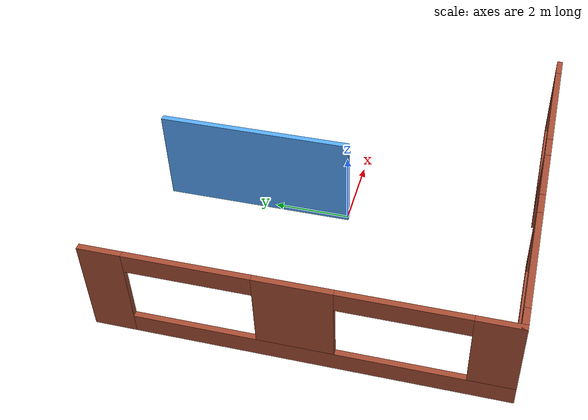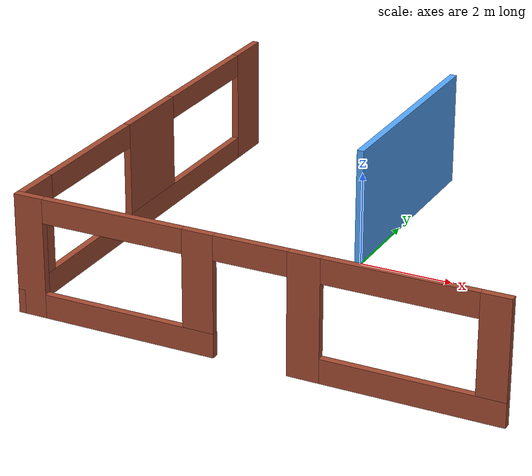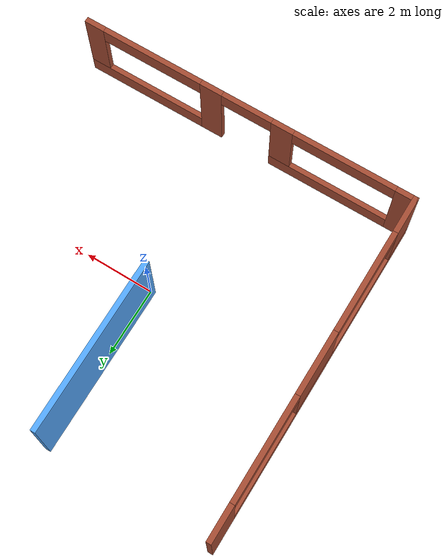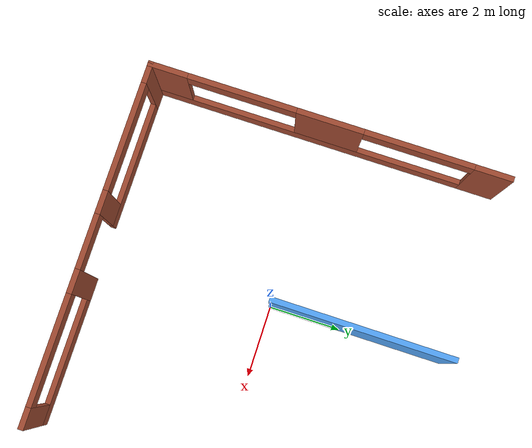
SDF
<sdf version="1.6">
 <model name="building">
  <link name="Wall_0">
   <pose>-4.938 0 0 0 0 -1.5708</pose>
   <visual name="Wall_0_Visual_5">
    <pose>2.39262 0 2.25 0 -0 0</pose>
    <geometry><box><size>3 0.15 0.5</size></box></geometry>
    <material>
     <script><uri>file://media/materials/scripts/gazebo.material</uri><name>Gazebo/Bricks</name></script>
     <ambient>1 1 1 1</ambient>
     <shader type="pixel"/>
     <diffuse>1 1 1 1</diffuse>
     <specular>0.2 0.2 0.2 1</specular>
     <emissive>0 0 0 1</emissive>
    </material>
    <meta><layer>0</layer></meta>
   </visual>
   <visual name="Wall_0_Visual_4">
    <pose>-2.45121 0 2.25 0 -0 0</pose>
    <geometry><box><size>3 0.15 0.5</size></box></geometry>
    <material>
     <script><uri>file://media/materials/scripts/gazebo.material</uri><name>Gazebo/Bricks</name></script>
     <ambient>1 1 1 1</ambient>
     <shader type="pixel"/>
     <diffuse>1 1 1 1</diffuse>
     <specular>0.2 0.2 0.2 1</specular>
     <emissive>0 0 0 1</emissive>
    </material>
    <meta><layer>0</layer></meta>
   </visual>
   <visual name="Wall_0_Visual_0">
    <pose>-4.4756 0 1.25 0 -0 0</pose>
    <geometry><box><size>1.04879 0.15 2.5</size></box></geometry>
    <material>
     <script><uri>file://media/materials/scripts/gazebo.material</uri><name>Gazebo/Bricks</name></script>
     <ambient>1 1 1 1</ambient>
     <shader type="pixel"/>
     <diffuse>1 1 1 1</diffuse>
     <specular>0.2 0.2 0.2 1</specular>
     <emissive>0 0 0 1</emissive>
    </material>
    <meta><layer>0</layer></meta>
   </visual>
   <visual name="Wall_0_Visual_3">
    <pose>4.44631 0 1.5 0 -0 0</pose>
    <geometry><box><size>1.10737 0.15 2</size></box></geometry>
    <material>
     <script><uri>file://media/materials/scripts/gazebo.material</uri><name>Gazebo/Bricks</name></script>
     <ambient>1 1 1 1</ambient>
     <shader type="pixel"/>
     <diffuse>1 1 1 1</diffuse>
     <specular>0.2 0.2 0.2 1</specular>
     <emissive>0 0 0 1</emissive>
    </material>
    <meta><layer>0</layer></meta>
   </visual>
   <visual name="Wall_0_Visual_2">
    <pose>-0.029291 0 1.5 0 -0 0</pose>
    <geometry><box><size>1.84383 0.15 2</size></box></geometry>
    <material>
     <script><uri>file://media/materials/scripts/gazebo.material</uri><name>Gazebo/Bricks</name></script>
     <ambient>1 1 1 1</ambient>
     <shader type="pixel"/>
     <diffuse>1 1 1 1</diffuse>
     <specular>0.2 0.2 0.2 1</specular>
     <emissive>0 0 0 1</emissive>
    </material>
    <meta><layer>0</layer></meta>
   </visual>
   <visual name="Wall_0_Visual_1">
    <pose>0.524397 0 0.25 0 -0 0</pose>
    <geometry><box><size>8.95121 0.15 0.5</size></box></geometry>
    <material>
     <script><uri>file://media/materials/scripts/gazebo.material</uri><name>Gazebo/Bricks</name></script>
     <ambient>1 1 1 1</ambient>
     <shader type="pixel"/>
     <diffuse>1 1 1 1</diffuse>
     <specular>0.2 0.2 0.2 1</specular>
     <emissive>0 0 0 1</emissive>
    </material>
    <meta><layer>0</layer></meta>
   </visual>
   <collision name="Wall_0_Collision_1">
    <pose>0.524397 0 0.25 0 -0 0</pose>
    <geometry><box><size>8.95121 0.15 0.5</size></box></geometry>
    <surface>
     <friction>
      <ode><mu>1</mu><mu2>1</mu2><fdir1>0 0 0</fdir1><slip1>0</slip1><slip2>0</slip2></ode>
      <torsional>
       <coefficient>1</coefficient>
       <patch_radius>0</patch_radius>
       <surface_radius>0</surface_radius>
       <use_patch_radius>1</use_patch_radius>
       <ode><slip>0</slip></ode>
      </torsional>
     </friction>
     <bounce><restitution_coefficient>0</restitution_coefficient><threshold>1e+06</threshold></bounce>
     <contact>
      <collide_without_contact>0</collide_without_contact>
      <collide_without_contact_bitmask>1</collide_without_contact_bitmask>
      <collide_bitmask>1</collide_bitmask>
      <ode>
       <soft_cfm>0</soft_cfm>
       <soft_erp>0.2</soft_erp>
       <kp>1e+13</kp>
       <kd>1</kd>
       <max_vel>0.01</max_vel>
       <min_depth>0</min_depth>
      </ode>
      <bullet>
       <split_impulse>1</split_impulse>
       <split_impulse_penetration_threshold>-0.01</split_impulse_penetration_threshold>
       <soft_cfm>0</soft_cfm>
       <soft_erp>0.2</soft_erp>
       <kp>1e+13</kp>
       <kd>1</kd>
      </bullet>
     </contact>
    </surface>
   </collision>
   <collision name="Wall_0_Collision_3">
    <pose>4.44631 0 1.5 0 -0 0</pose>
    <geometry><box><size>1.10737 0.15 2</size></box></geometry>
    <surface>
     <friction>
      <ode><mu>1</mu><mu2>1</mu2><fdir1>0 0 0</fdir1><slip1>0</slip1><slip2>0</slip2></ode>
      <torsional>
       <coefficient>1</coefficient>
       <patch_radius>0</patch_radius>
       <surface_radius>0</surface_radius>
       <use_patch_radius>1</use_patch_radius>
       <ode><slip>0</slip></ode>
      </torsional>
     </friction>
     <bounce><restitution_coefficient>0</restitution_coefficient><threshold>1e+06</threshold></bounce>
     <contact>
      <collide_without_contact>0</collide_without_contact>
      <collide_without_contact_bitmask>1</collide_without_contact_bitmask>
      <collide_bitmask>1</collide_bitmask>
      <ode>
       <soft_cfm>0</soft_cfm>
       <soft_erp>0.2</soft_erp>
       <kp>1e+13</kp>
       <kd>1</kd>
       <max_vel>0.01</max_vel>
       <min_depth>0</min_depth>
      </ode>
      <bullet>
       <split_impulse>1</split_impulse>
       <split_impulse_penetration_threshold>-0.01</split_impulse_penetration_threshold>
       <soft_cfm>0</soft_cfm>
       <soft_erp>0.2</soft_erp>
       <kp>1e+13</kp>
       <kd>1</kd>
      </bullet>
     </contact>
    </surface>
   </collision>
   <collision name="Wall_0_Collision_4">
    <pose>-2.45121 0 2.25 0 -0 0</pose>
    <geometry><box><size>3 0.15 0.5</size></box></geometry>
    <surface>
     <friction>
      <ode><mu>1</mu><mu2>1</mu2><fdir1>0 0 0</fdir1><slip1>0</slip1><slip2>0</slip2></ode>
      <torsional>
       <coefficient>1</coefficient>
       <patch_radius>0</patch_radius>
       <surface_radius>0</surface_radius>
       <use_patch_radius>1</use_patch_radius>
       <ode><slip>0</slip></ode>
      </torsional>
     </friction>
     <bounce><restitution_coefficient>0</restitution_coefficient><threshold>1e+06</threshold></bounce>
     <contact>
      <collide_without_contact>0</collide_without_contact>
      <collide_without_contact_bitmask>1</collide_without_contact_bitmask>
      <collide_bitmask>1</collide_bitmask>
      <ode>
       <soft_cfm>0</soft_cfm>
       <soft_erp>0.2</soft_erp>
       <kp>1e+13</kp>
       <kd>1</kd>
       <max_vel>0.01</max_vel>
       <min_depth>0</min_depth>
      </ode>
      <bullet>
       <split_impulse>1</split_impulse>
       <split_impulse_penetration_threshold>-0.01</split_impulse_penetration_threshold>
       <soft_cfm>0</soft_cfm>
       <soft_erp>0.2</soft_erp>
       <kp>1e+13</kp>
       <kd>1</kd>
      </bullet>
     </contact>
    </surface>
   </collision>
   <collision name="Wall_0_Collision_2">
    <pose>-0.029291 0 1.5 0 -0 0</pose>
    <geometry><box><size>1.84383 0.15 2</size></box></geometry>
    <surface>
     <friction>
      <ode><mu>1</mu><mu2>1</mu2><fdir1>0 0 0</fdir1><slip1>0</slip1><slip2>0</slip2></ode>
      <torsional>
       <coefficient>1</coefficient>
       <patch_radius>0</patch_radius>
       <surface_radius>0</surface_radius>
       <use_patch_radius>1</use_patch_radius>
       <ode><slip>0</slip></ode>
      </torsional>
     </friction>
     <bounce><restitution_coefficient>0</restitution_coefficient><threshold>1e+06</threshold></bounce>
     <contact>
      <collide_without_contact>0</collide_without_contact>
      <collide_without_contact_bitmask>1</collide_without_contact_bitmask>
      <collide_bitmask>1</collide_bitmask>
      <ode>
       <soft_cfm>0</soft_cfm>
       <soft_erp>0.2</soft_erp>
       <kp>1e+13</kp>
       <kd>1</kd>
       <max_vel>0.01</max_vel>
       <min_depth>0</min_depth>
      </ode>
      <bullet>
       <split_impulse>1</split_impulse>
       <split_impulse_penetration_threshold>-0.01</split_impulse_penetration_threshold>
       <soft_cfm>0</soft_cfm>
       <soft_erp>0.2</soft_erp>
       <kp>1e+13</kp>
       <kd>1</kd>
      </bullet>
     </contact>
    </surface>
   </collision>
   <collision name="Wall_0_Collision_0">
    <pose>-4.4756 0 1.25 0 -0 0</pose>
    <geometry><box><size>1.04879 0.15 2.5</size></box></geometry>
    <surface>
     <friction>
      <ode><mu>1</mu><mu2>1</mu2><fdir1>0 0 0</fdir1><slip1>0</slip1><slip2>0</slip2></ode>
      <torsional>
       <coefficient>1</coefficient>
       <patch_radius>0</patch_radius>
       <surface_radius>0</surface_radius>
       <use_patch_radius>1</use_patch_radius>
       <ode><slip>0</slip></ode>
      </torsional>
     </friction>
     <bounce><restitution_coefficient>0</restitution_coefficient><threshold>1e+06</threshold></bounce>
     <contact>
      <collide_without_contact>0</collide_without_contact>
      <collide_without_contact_bitmask>1</collide_without_contact_bitmask>
      <collide_bitmask>1</collide_bitmask>
      <ode>
       <soft_cfm>0</soft_cfm>
       <soft_erp>0.2</soft_erp>
       <kp>1e+13</kp>
       <kd>1</kd>
       <max_vel>0.01</max_vel>
       <min_depth>0</min_depth>
      </ode>
      <bullet>
       <split_impulse>1</split_impulse>
       <split_impulse_penetration_threshold>-0.01</split_impulse_penetration_threshold>
       <soft_cfm>0</soft_cfm>
       <soft_erp>0.2</soft_erp>
       <kp>1e+13</kp>
       <kd>1</kd>
      </bullet>
     </contact>
    </surface>
   </collision>
   <collision name="Wall_0_Collision_5">
    <pose>2.39262 0 2.25 0 -0 0</pose>
    <geometry><box><size>3 0.15 0.5</size></box></geometry>
    <surface>
     <friction>
      <ode><mu>1</mu><mu2>1</mu2><fdir1>0 0 0</fdir1><slip1>0</slip1><slip2>0</slip2></ode>
      <torsional>
       <coefficient>1</coefficient>
       <patch_radius>0</patch_radius>
       <surface_radius>0</surface_radius>
       <use_patch_radius>1</use_patch_radius>
       <ode><slip>0</slip></ode>
      </torsional>
     </friction>
     <bounce><restitution_coefficient>0</restitution_coefficient><threshold>1e+06</threshold></bounce>
     <contact>
      <collide_without_contact>0</collide_without_contact>
      <collide_without_contact_bitmask>1</collide_without_contact_bitmask>
      <collide_bitmask>1</collide_bitmask>
      <ode>
       <soft_cfm>0</soft_cfm>
       <soft_erp>0.2</soft_erp>
       <kp>1e+13</kp>
       <kd>1</kd>
       <max_vel>0.01</max_vel>
       <min_depth>0</min_depth>
      </ode>
      <bullet>
       <split_impulse>1</split_impulse>
       <split_impulse_penetration_threshold>-0.01</split_impulse_penetration_threshold>
       <soft_cfm>0</soft_cfm>
       <soft_erp>0.2</soft_erp>
       <kp>1e+13</kp>
       <kd>1</kd>
      </bullet>
     </contact>
    </surface>
   </collision>
  </link>
  <link name="Wall_1">
   <pose>-0.013 -4.925 0 0 -0 0</pose>
   <visual name="Wall_1_Visual_0">
    <pose>-4.69268 0 1.25 0 -0 0</pose>
    <geometry><box><size>0.614643 0.15 2.5</size></box></geometry>
    <material>
     <script><uri>file://media/materials/scripts/gazebo.material</uri><name>Gazebo/Bricks</name></script>
     <ambient>1 1 1 1</ambient>
     <shader type="pixel"/>
     <diffuse>1 1 1 1</diffuse>
     <specular>0.2 0.2 0.2 1</specular>
     <emissive>0 0 0 1</emissive>
    </material>
    <meta><layer>0</layer></meta>
   </visual>
   <visual name="Wall_1_Visual_3">
    <pose>3.2068 0 0.25 0 -0 0</pose>
    <geometry><box><size>3.5864 0.15 0.5</size></box></geometry>
    <material>
     <script><uri>file://media/materials/scripts/gazebo.material</uri><name>Gazebo/Bricks</name></script>
     <ambient>1 1 1 1</ambient>
     <shader type="pixel"/>
     <diffuse>1 1 1 1</diffuse>
     <specular>0.2 0.2 0.2 1</specular>
     <emissive>0 0 0 1</emissive>
    </material>
    <meta><layer>0</layer></meta>
   </visual>
   <visual name="Wall_1_Visual_1">
    <pose>1.08612 0 1.25 0 -0 0</pose>
    <geometry><box><size>0.654955 0.15 2.5</size></box></geometry>
    <material>
     <script><uri>file://media/materials/scripts/gazebo.material</uri><name>Gazebo/Bricks</name></script>
     <ambient>1 1 1 1</ambient>
     <shader type="pixel"/>
     <diffuse>1 1 1 1</diffuse>
     <specular>0.2 0.2 0.2 1</specular>
     <emissive>0 0 0 1</emissive>
    </material>
    <meta><layer>0</layer></meta>
   </visual>
   <visual name="Wall_1_Visual_2">
    <pose>-2.56336 0 0.25 0 -0 0</pose>
    <geometry><box><size>3.644 0.15 0.5</size></box></geometry>
    <material>
     <script><uri>file://media/materials/scripts/gazebo.material</uri><name>Gazebo/Bricks</name></script>
     <ambient>1 1 1 1</ambient>
     <shader type="pixel"/>
     <diffuse>1 1 1 1</diffuse>
     <specular>0.2 0.2 0.2 1</specular>
     <emissive>0 0 0 1</emissive>
    </material>
    <meta><layer>0</layer></meta>
   </visual>
   <visual name="Wall_1_Visual_5">
    <pose>-1.06336 0 1.5 0 -0 0</pose>
    <geometry><box><size>0.643998 0.15 2</size></box></geometry>
    <material>
     <script><uri>file://media/materials/scripts/gazebo.material</uri><name>Gazebo/Bricks</name></script>
     <ambient>1 1 1 1</ambient>
     <shader type="pixel"/>
     <diffuse>1 1 1 1</diffuse>
     <specular>0.2 0.2 0.2 1</specular>
     <emissive>0 0 0 1</emissive>
    </material>
    <meta><layer>0</layer></meta>
   </visual>
   <visual name="Wall_1_Visual_6">
    <pose>4.7068 0 1.5 0 -0 0</pose>
    <geometry><box><size>0.586404 0.15 2</size></box></geometry>
    <material>
     <script><uri>file://media/materials/scripts/gazebo.material</uri><name>Gazebo/Bricks</name></script>
     <ambient>1 1 1 1</ambient>
     <shader type="pixel"/>
     <diffuse>1 1 1 1</diffuse>
     <specular>0.2 0.2 0.2 1</specular>
     <emissive>0 0 0 1</emissive>
    </material>
    <meta><layer>0</layer></meta>
   </visual>
   <visual name="Wall_1_Visual_8">
    <pose>2.9136 0 2.25 0 -0 0</pose>
    <geometry><box><size>3 0.15 0.5</size></box></geometry>
    <material>
     <script><uri>file://media/materials/scripts/gazebo.material</uri><name>Gazebo/Bricks</name></script>
     <ambient>1 1 1 1</ambient>
     <shader type="pixel"/>
     <diffuse>1 1 1 1</diffuse>
     <specular>0.2 0.2 0.2 1</specular>
     <emissive>0 0 0 1</emissive>
    </material>
    <meta><layer>0</layer></meta>
   </visual>
   <visual name="Wall_1_Visual_9">
    <pose>0.008641 0 2.25 0 -0 0</pose>
    <geometry><box><size>1.5 0.15 0.5</size></box></geometry>
    <material>
     <script><uri>file://media/materials/scripts/gazebo.material</uri><name>Gazebo/Bricks</name></script>
     <ambient>1 1 1 1</ambient>
     <shader type="pixel"/>
     <diffuse>1 1 1 1</diffuse>
     <specular>0.2 0.2 0.2 1</specular>
     <emissive>0 0 0 1</emissive>
    </material>
    <meta><layer>0</layer></meta>
   </visual>
   <visual name="Wall_1_Visual_10">
    <pose>0.008641 0 2.25 0 -0 0</pose>
    <geometry><box><size>1.5 0.15 0.5</size></box></geometry>
    <material>
     <script><uri>file://media/materials/scripts/gazebo.material</uri><name>Gazebo/Bricks</name></script>
     <ambient>1 1 1 1</ambient>
     <shader type="pixel"/>
     <diffuse>1 1 1 1</diffuse>
     <specular>0.2 0.2 0.2 1</specular>
     <emissive>0 0 0 1</emissive>
    </material>
    <meta><layer>0</layer></meta>
   </visual>
   <visual name="Wall_1_Visual_4">
    <pose>-1.06336 0 1.5 0 -0 0</pose>
    <geometry><box><size>0.643998 0.15 2</size></box></geometry>
    <material>
     <script><uri>file://media/materials/scripts/gazebo.material</uri><name>Gazebo/Bricks</name></script>
     <ambient>1 1 1 1</ambient>
     <shader type="pixel"/>
     <diffuse>1 1 1 1</diffuse>
     <specular>0.2 0.2 0.2 1</specular>
     <emissive>0 0 0 1</emissive>
    </material>
    <meta><layer>0</layer></meta>
   </visual>
   <visual name="Wall_1_Visual_7">
    <pose>-2.88536 0 2.25 0 -0 0</pose>
    <geometry><box><size>3 0.15 0.5</size></box></geometry>
    <material>
     <script><uri>file://media/materials/scripts/gazebo.material</uri><name>Gazebo/Bricks</name></script>
     <ambient>1 1 1 1</ambient>
     <shader type="pixel"/>
     <diffuse>1 1 1 1</diffuse>
     <specular>0.2 0.2 0.2 1</specular>
     <emissive>0 0 0 1</emissive>
    </material>
    <meta><layer>0</layer></meta>
   </visual>
   <collision name="Wall_1_Collision_1">
    <pose>1.08612 0 1.25 0 -0 0</pose>
    <geometry><box><size>0.654955 0.15 2.5</size></box></geometry>
    <surface>
     <friction>
      <ode><mu>1</mu><mu2>1</mu2><fdir1>0 0 0</fdir1><slip1>0</slip1><slip2>0</slip2></ode>
      <torsional>
       <coefficient>1</coefficient>
       <patch_radius>0</patch_radius>
       <surface_radius>0</surface_radius>
       <use_patch_radius>1</use_patch_radius>
       <ode><slip>0</slip></ode>
      </torsional>
     </friction>
     <bounce><restitution_coefficient>0</restitution_coefficient><threshold>1e+06</threshold></bounce>
     <contact>
      <collide_without_contact>0</collide_without_contact>
      <collide_without_contact_bitmask>1</collide_without_contact_bitmask>
      <collide_bitmask>1</collide_bitmask>
      <ode>
       <soft_cfm>0</soft_cfm>
       <soft_erp>0.2</soft_erp>
       <kp>1e+13</kp>
       <kd>1</kd>
       <max_vel>0.01</max_vel>
       <min_depth>0</min_depth>
      </ode>
      <bullet>
       <split_impulse>1</split_impulse>
       <split_impulse_penetration_threshold>-0.01</split_impulse_penetration_threshold>
       <soft_cfm>0</soft_cfm>
       <soft_erp>0.2</soft_erp>
       <kp>1e+13</kp>
       <kd>1</kd>
      </bullet>
     </contact>
    </surface>
   </collision>
   <collision name="Wall_1_Collision_9">
    <pose>0.008641 0 2.25 0 -0 0</pose>
    <geometry><box><size>1.5 0.15 0.5</size></box></geometry>
    <surface>
     <friction>
      <ode><mu>1</mu><mu2>1</mu2><fdir1>0 0 0</fdir1><slip1>0</slip1><slip2>0</slip2></ode>
      <torsional>
       <coefficient>1</coefficient>
       <patch_radius>0</patch_radius>
       <surface_radius>0</surface_radius>
       <use_patch_radius>1</use_patch_radius>
       <ode><slip>0</slip></ode>
      </torsional>
     </friction>
     <bounce><restitution_coefficient>0</restitution_coefficient><threshold>1e+06</threshold></bounce>
     <contact>
      <collide_without_contact>0</collide_without_contact>
      <collide_without_contact_bitmask>1</collide_without_contact_bitmask>
      <collide_bitmask>1</collide_bitmask>
      <ode>
       <soft_cfm>0</soft_cfm>
       <soft_erp>0.2</soft_erp>
       <kp>1e+13</kp>
       <kd>1</kd>
       <max_vel>0.01</max_vel>
       <min_depth>0</min_depth>
      </ode>
      <bullet>
       <split_impulse>1</split_impulse>
       <split_impulse_penetration_threshold>-0.01</split_impulse_penetration_threshold>
       <soft_cfm>0</soft_cfm>
       <soft_erp>0.2</soft_erp>
       <kp>1e+13</kp>
       <kd>1</kd>
      </bullet>
     </contact>
    </surface>
   </collision>
   <collision name="Wall_1_Collision_4">
    <pose>-1.06336 0 1.5 0 -0 0</pose>
    <geometry><box><size>0.643998 0.15 2</size></box></geometry>
    <surface>
     <friction>
      <ode><mu>1</mu><mu2>1</mu2><fdir1>0 0 0</fdir1><slip1>0</slip1><slip2>0</slip2></ode>
      <torsional>
       <coefficient>1</coefficient>
       <patch_radius>0</patch_radius>
       <surface_radius>0</surface_radius>
       <use_patch_radius>1</use_patch_radius>
       <ode><slip>0</slip></ode>
      </torsional>
     </friction>
     <bounce><restitution_coefficient>0</restitution_coefficient><threshold>1e+06</threshold></bounce>
     <contact>
      <collide_without_contact>0</collide_without_contact>
      <collide_without_contact_bitmask>1</collide_without_contact_bitmask>
      <collide_bitmask>1</collide_bitmask>
      <ode>
       <soft_cfm>0</soft_cfm>
       <soft_erp>0.2</soft_erp>
       <kp>1e+13</kp>
       <kd>1</kd>
       <max_vel>0.01</max_vel>
       <min_depth>0</min_depth>
      </ode>
      <bullet>
       <split_impulse>1</split_impulse>
       <split_impulse_penetration_threshold>-0.01</split_impulse_penetration_threshold>
       <soft_cfm>0</soft_cfm>
       <soft_erp>0.2</soft_erp>
       <kp>1e+13</kp>
       <kd>1</kd>
      </bullet>
     </contact>
    </surface>
   </collision>
   <collision name="Wall_1_Collision_2">
    <pose>-2.56336 0 0.25 0 -0 0</pose>
    <geometry><box><size>3.644 0.15 0.5</size></box></geometry>
    <surface>
     <friction>
      <ode><mu>1</mu><mu2>1</mu2><fdir1>0 0 0</fdir1><slip1>0</slip1><slip2>0</slip2></ode>
      <torsional>
       <coefficient>1</coefficient>
       <patch_radius>0</patch_radius>
       <surface_radius>0</surface_radius>
       <use_patch_radius>1</use_patch_radius>
       <ode><slip>0</slip></ode>
      </torsional>
     </friction>
     <bounce><restitution_coefficient>0</restitution_coefficient><threshold>1e+06</threshold></bounce>
     <contact>
      <collide_without_contact>0</collide_without_contact>
      <collide_without_contact_bitmask>1</collide_without_contact_bitmask>
      <collide_bitmask>1</collide_bitmask>
      <ode>
       <soft_cfm>0</soft_cfm>
       <soft_erp>0.2</soft_erp>
       <kp>1e+13</kp>
       <kd>1</kd>
       <max_vel>0.01</max_vel>
       <min_depth>0</min_depth>
      </ode>
      <bullet>
       <split_impulse>1</split_impulse>
       <split_impulse_penetration_threshold>-0.01</split_impulse_penetration_threshold>
       <soft_cfm>0</soft_cfm>
       <soft_erp>0.2</soft_erp>
       <kp>1e+13</kp>
       <kd>1</kd>
      </bullet>
     </contact>
    </surface>
   </collision>
   <collision name="Wall_1_Collision_8">
    <pose>2.9136 0 2.25 0 -0 0</pose>
    <geometry><box><size>3 0.15 0.5</size></box></geometry>
    <surface>
     <friction>
      <ode><mu>1</mu><mu2>1</mu2><fdir1>0 0 0</fdir1><slip1>0</slip1><slip2>0</slip2></ode>
      <torsional>
       <coefficient>1</coefficient>
       <patch_radius>0</patch_radius>
       <surface_radius>0</surface_radius>
       <use_patch_radius>1</use_patch_radius>
       <ode><slip>0</slip></ode>
      </torsional>
     </friction>
     <bounce><restitution_coefficient>0</restitution_coefficient><threshold>1e+06</threshold></bounce>
     <contact>
      <collide_without_contact>0</collide_without_contact>
      <collide_without_contact_bitmask>1</collide_without_contact_bitmask>
      <collide_bitmask>1</collide_bitmask>
      <ode>
       <soft_cfm>0</soft_cfm>
       <soft_erp>0.2</soft_erp>
       <kp>1e+13</kp>
       <kd>1</kd>
       <max_vel>0.01</max_vel>
       <min_depth>0</min_depth>
      </ode>
      <bullet>
       <split_impulse>1</split_impulse>
       <split_impulse_penetration_threshold>-0.01</split_impulse_penetration_threshold>
       <soft_cfm>0</soft_cfm>
       <soft_erp>0.2</soft_erp>
       <kp>1e+13</kp>
       <kd>1</kd>
      </bullet>
     </contact>
    </surface>
   </collision>
   <collision name="Wall_1_Collision_5">
    <pose>-1.06336 0 1.5 0 -0 0</pose>
    <geometry><box><size>0.643998 0.15 2</size></box></geometry>
    <surface>
     <friction>
      <ode><mu>1</mu><mu2>1</mu2><fdir1>0 0 0</fdir1><slip1>0</slip1><slip2>0</slip2></ode>
      <torsional>
       <coefficient>1</coefficient>
       <patch_radius>0</patch_radius>
       <surface_radius>0</surface_radius>
       <use_patch_radius>1</use_patch_radius>
       <ode><slip>0</slip></ode>
      </torsional>
     </friction>
     <bounce><restitution_coefficient>0</restitution_coefficient><threshold>1e+06</threshold></bounce>
     <contact>
      <collide_without_contact>0</collide_without_contact>
      <collide_without_contact_bitmask>1</collide_without_contact_bitmask>
      <collide_bitmask>1</collide_bitmask>
      <ode>
       <soft_cfm>0</soft_cfm>
       <soft_erp>0.2</soft_erp>
       <kp>1e+13</kp>
       <kd>1</kd>
       <max_vel>0.01</max_vel>
       <min_depth>0</min_depth>
      </ode>
      <bullet>
       <split_impulse>1</split_impulse>
       <split_impulse_penetration_threshold>-0.01</split_impulse_penetration_threshold>
       <soft_cfm>0</soft_cfm>
       <soft_erp>0.2</soft_erp>
       <kp>1e+13</kp>
       <kd>1</kd>
      </bullet>
     </contact>
    </surface>
   </collision>
   <collision name="Wall_1_Collision_3">
    <pose>3.2068 0 0.25 0 -0 0</pose>
    <geometry><box><size>3.5864 0.15 0.5</size></box></geometry>
    <surface>
     <friction>
      <ode><mu>1</mu><mu2>1</mu2><fdir1>0 0 0</fdir1><slip1>0</slip1><slip2>0</slip2></ode>
      <torsional>
       <coefficient>1</coefficient>
       <patch_radius>0</patch_radius>
       <surface_radius>0</surface_radius>
       <use_patch_radius>1</use_patch_radius>
       <ode><slip>0</slip></ode>
      </torsional>
     </friction>
     <bounce><restitution_coefficient>0</restitution_coefficient><threshold>1e+06</threshold></bounce>
     <contact>
      <collide_without_contact>0</collide_without_contact>
      <collide_without_contact_bitmask>1</collide_without_contact_bitmask>
      <collide_bitmask>1</collide_bitmask>
      <ode>
       <soft_cfm>0</soft_cfm>
       <soft_erp>0.2</soft_erp>
       <kp>1e+13</kp>
       <kd>1</kd>
       <max_vel>0.01</max_vel>
       <min_depth>0</min_depth>
      </ode>
      <bullet>
       <split_impulse>1</split_impulse>
       <split_impulse_penetration_threshold>-0.01</split_impulse_penetration_threshold>
       <soft_cfm>0</soft_cfm>
       <soft_erp>0.2</soft_erp>
       <kp>1e+13</kp>
       <kd>1</kd>
      </bullet>
     </contact>
    </surface>
   </collision>
   <collision name="Wall_1_Collision_7">
    <pose>-2.88536 0 2.25 0 -0 0</pose>
    <geometry><box><size>3 0.15 0.5</size></box></geometry>
    <surface>
     <friction>
      <ode><mu>1</mu><mu2>1</mu2><fdir1>0 0 0</fdir1><slip1>0</slip1><slip2>0</slip2></ode>
      <torsional>
       <coefficient>1</coefficient>
       <patch_radius>0</patch_radius>
       <surface_radius>0</surface_radius>
       <use_patch_radius>1</use_patch_radius>
       <ode><slip>0</slip></ode>
      </torsional>
     </friction>
     <bounce><restitution_coefficient>0</restitution_coefficient><threshold>1e+06</threshold></bounce>
     <contact>
      <collide_without_contact>0</collide_without_contact>
      <collide_without_contact_bitmask>1</collide_without_contact_bitmask>
      <collide_bitmask>1</collide_bitmask>
      <ode>
       <soft_cfm>0</soft_cfm>
       <soft_erp>0.2</soft_erp>
       <kp>1e+13</kp>
       <kd>1</kd>
       <max_vel>0.01</max_vel>
       <min_depth>0</min_depth>
      </ode>
      <bullet>
       <split_impulse>1</split_impulse>
       <split_impulse_penetration_threshold>-0.01</split_impulse_penetration_threshold>
       <soft_cfm>0</soft_cfm>
       <soft_erp>0.2</soft_erp>
       <kp>1e+13</kp>
       <kd>1</kd>
      </bullet>
     </contact>
    </surface>
   </collision>
   <collision name="Wall_1_Collision_0">
    <pose>-4.69268 0 1.25 0 -0 0</pose>
    <geometry><box><size>0.614643 0.15 2.5</size></box></geometry>
    <surface>
     <friction>
      <ode><mu>1</mu><mu2>1</mu2><fdir1>0 0 0</fdir1><slip1>0</slip1><slip2>0</slip2></ode>
      <torsional>
       <coefficient>1</coefficient>
       <patch_radius>0</patch_radius>
       <surface_radius>0</surface_radius>
       <use_patch_radius>1</use_patch_radius>
       <ode><slip>0</slip></ode>
      </torsional>
     </friction>
     <bounce><restitution_coefficient>0</restitution_coefficient><threshold>1e+06</threshold></bounce>
     <contact>
      <collide_without_contact>0</collide_without_contact>
      <collide_without_contact_bitmask>1</collide_without_contact_bitmask>
      <collide_bitmask>1</collide_bitmask>
      <ode>
       <soft_cfm>0</soft_cfm>
       <soft_erp>0.2</soft_erp>
       <kp>1e+13</kp>
       <kd>1</kd>
       <max_vel>0.01</max_vel>
       <min_depth>0</min_depth>
      </ode>
      <bullet>
       <split_impulse>1</split_impulse>
       <split_impulse_penetration_threshold>-0.01</split_impulse_penetration_threshold>
       <soft_cfm>0</soft_cfm>
       <soft_erp>0.2</soft_erp>
       <kp>1e+13</kp>
       <kd>1</kd>
      </bullet>
     </contact>
    </surface>
   </collision>
   <collision name="Wall_1_Collision_10">
    <pose>0.008641 0 2.25 0 -0 0</pose>
    <geometry><box><size>1.5 0.15 0.5</size></box></geometry>
    <surface>
     <friction>
      <ode><mu>1</mu><mu2>1</mu2><fdir1>0 0 0</fdir1><slip1>0</slip1><slip2>0</slip2></ode>
      <torsional>
       <coefficient>1</coefficient>
       <patch_radius>0</patch_radius>
       <surface_radius>0</surface_radius>
       <use_patch_radius>1</use_patch_radius>
       <ode><slip>0</slip></ode>
      </torsional>
     </friction>
     <bounce><restitution_coefficient>0</restitution_coefficient><threshold>1e+06</threshold></bounce>
     <contact>
      <collide_without_contact>0</collide_without_contact>
      <collide_without_contact_bitmask>1</collide_without_contact_bitmask>
      <collide_bitmask>1</collide_bitmask>
      <ode>
       <soft_cfm>0</soft_cfm>
       <soft_erp>0.2</soft_erp>
       <kp>1e+13</kp>
       <kd>1</kd>
       <max_vel>0.01</max_vel>
       <min_depth>0</min_depth>
      </ode>
      <bullet>
       <split_impulse>1</split_impulse>
       <split_impulse_penetration_threshold>-0.01</split_impulse_penetration_threshold>
       <soft_cfm>0</soft_cfm>
       <soft_erp>0.2</soft_erp>
       <kp>1e+13</kp>
       <kd>1</kd>
      </bullet>
     </contact>
    </surface>
   </collision>
   <collision name="Wall_1_Collision_6">
    <pose>4.7068 0 1.5 0 -0 0</pose>
    <geometry><box><size>0.586404 0.15 2</size></box></geometry>
    <surface>
     <friction>
      <ode><mu>1</mu><mu2>1</mu2><fdir1>0 0 0</fdir1><slip1>0</slip1><slip2>0</slip2></ode>
      <torsional>
       <coefficient>1</coefficient>
       <patch_radius>0</patch_radius>
       <surface_radius>0</surface_radius>
       <use_patch_radius>1</use_patch_radius>
       <ode><slip>0</slip></ode>
      </torsional>
     </friction>
     <bounce><restitution_coefficient>0</restitution_coefficient><threshold>1e+06</threshold></bounce>
     <contact>
      <collide_without_contact>0</collide_without_contact>
      <collide_without_contact_bitmask>1</collide_without_contact_bitmask>
      <collide_bitmask>1</collide_bitmask>
      <ode>
       <soft_cfm>0</soft_cfm>
       <soft_erp>0.2</soft_erp>
       <kp>1e+13</kp>
       <kd>1</kd>
       <max_vel>0.01</max_vel>
       <min_depth>0</min_depth>
      </ode>
      <bullet>
       <split_impulse>1</split_impulse>
       <split_impulse_penetration_threshold>-0.01</split_impulse_penetration_threshold>
       <soft_cfm>0</soft_cfm>
       <soft_erp>0.2</soft_erp>
       <kp>1e+13</kp>
       <kd>1</kd>
      </bullet>
     </contact>
    </surface>
   </collision>
  </link>
  <link name="Wall_18">
   <pose>-0.045871 2.45735 0 0 0 -1.5708</pose>
   <visual name="Wall_18_Visual">
    <pose>0 0 1.25 0 -0 0</pose>
    <geometry><box><size>5 0.15 2.5</size></box></geometry>
    <material>
     <script><uri>file://media/materials/scripts/gazebo.material</uri><name>Gazebo/Grey</name></script>
     <ambient>0.333333 0.666667 1 1</ambient>
     <shader type="pixel"/>
     <diffuse>0.7 0.7 0.7 1</diffuse>
     <specular>0.01 0.01 0.01 1</specular>
     <emissive>0 0 0 1</emissive>
    </material>
    <meta><layer>0</layer></meta>
   </visual>
   <collision name="Wall_18_Collision">
    <pose>0 0 1.25 0 -0 0</pose>
    <geometry><box><size>5 0.15 2.5</size></box></geometry>
    <surface>
     <friction>
      <ode><mu>1</mu><mu2>1</mu2><fdir1>0 0 0</fdir1><slip1>0</slip1><slip2>0</slip2></ode>
      <torsional>
       <coefficient>1</coefficient>
       <patch_radius>0</patch_radius>
       <surface_radius>0</surface_radius>
       <use_patch_radius>1</use_patch_radius>
       <ode><slip>0</slip></ode>
      </torsional>
     </friction>
     <bounce><restitution_coefficient>0</restitution_coefficient><threshold>1e+06</threshold></bounce>
     <contact>
      <collide_without_contact>0</collide_without_contact>
      <collide_without_contact_bitmask>1</collide_without_contact_bitmask>
      <collide_bitmask>1</collide_bitmask>
      <ode>
       <soft_cfm>0</soft_cfm>
       <soft_erp>0.2</soft_erp>
       <kp>1e+13</kp>
       <kd>1</kd>
       <max_vel>0.01</max_vel>
       <min_depth>0</min_depth>
      </ode>
      <bullet>
       <split_impulse>1</split_impulse>
       <split_impulse_penetration_threshold>-0.01</split_impulse_penetration_threshold>
       <soft_cfm>0</soft_cfm>
       <soft_erp>0.2</soft_erp>
       <kp>1e+13</kp>
       <kd>1</kd>
      </bullet>
     </contact>
    </surface>
   </collision>
  </link>
  <static>1</static>
 </model>
</sdf>
